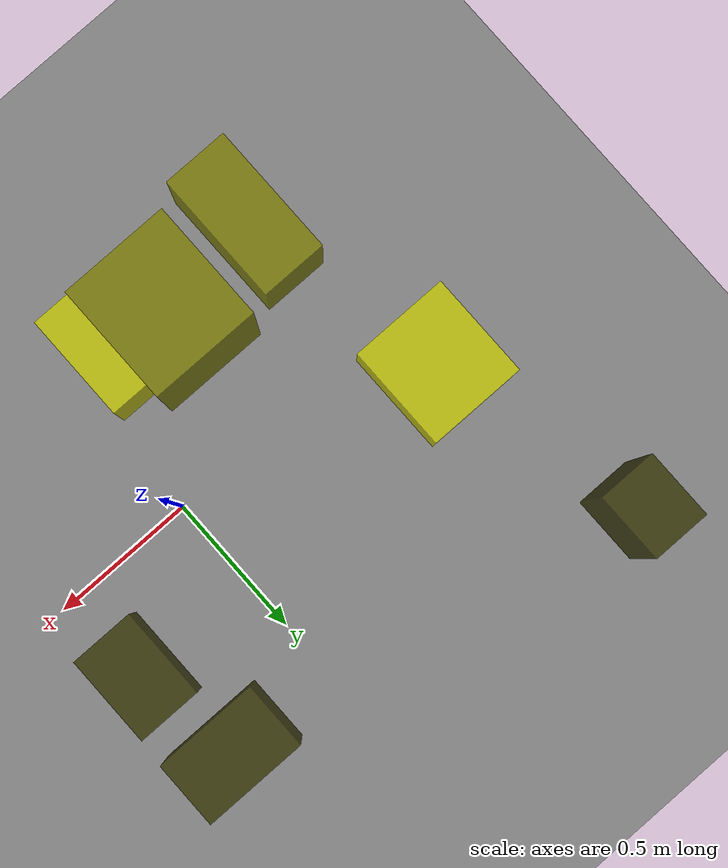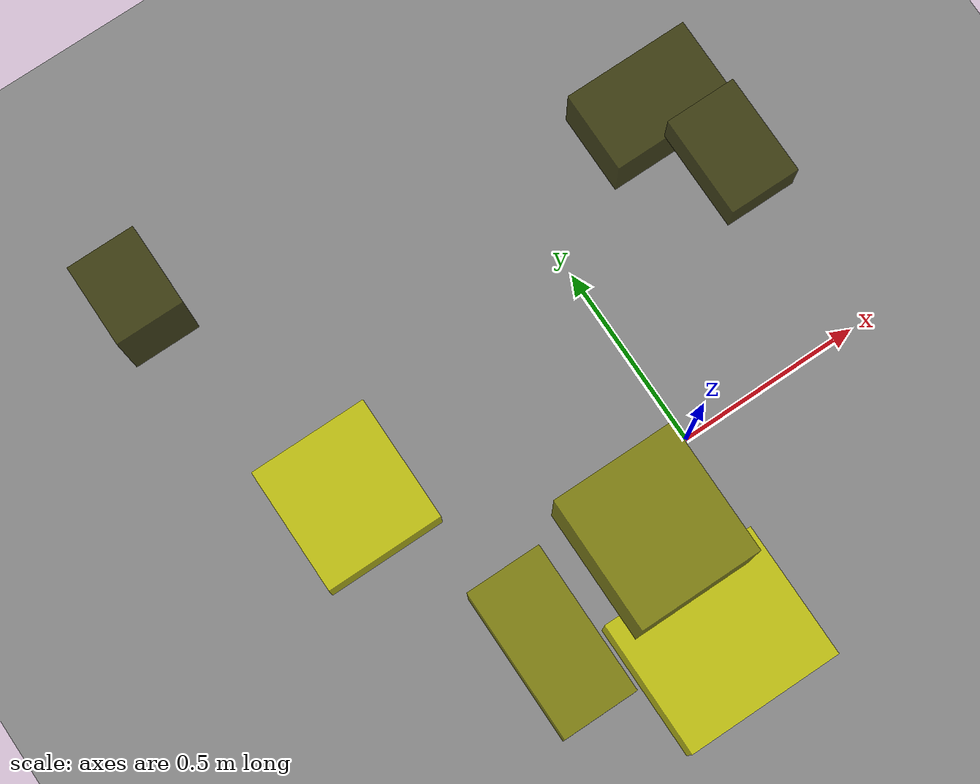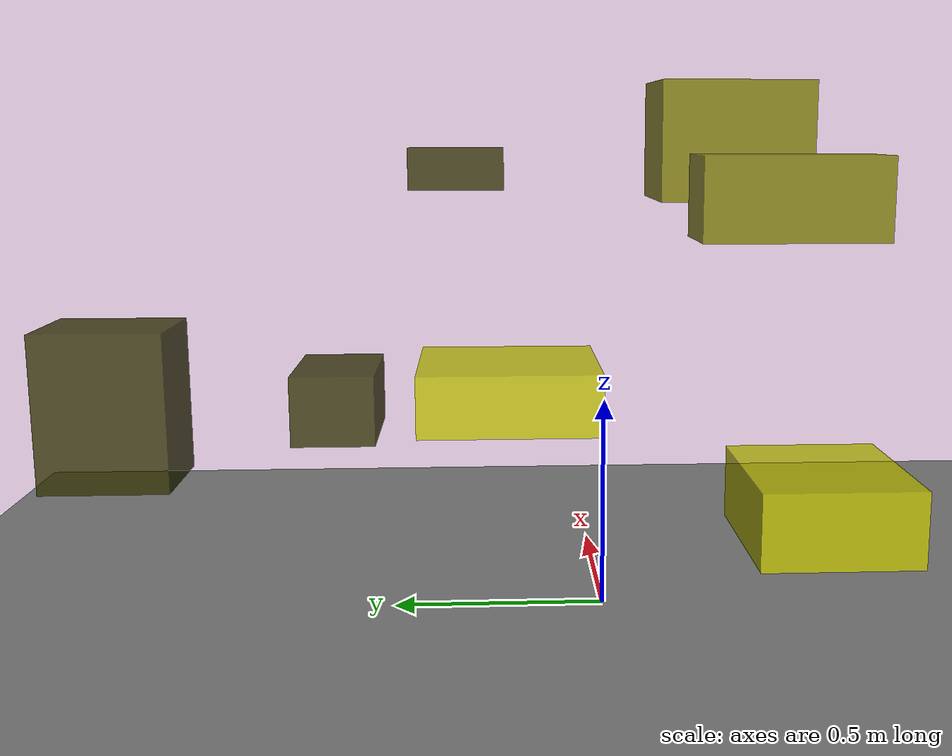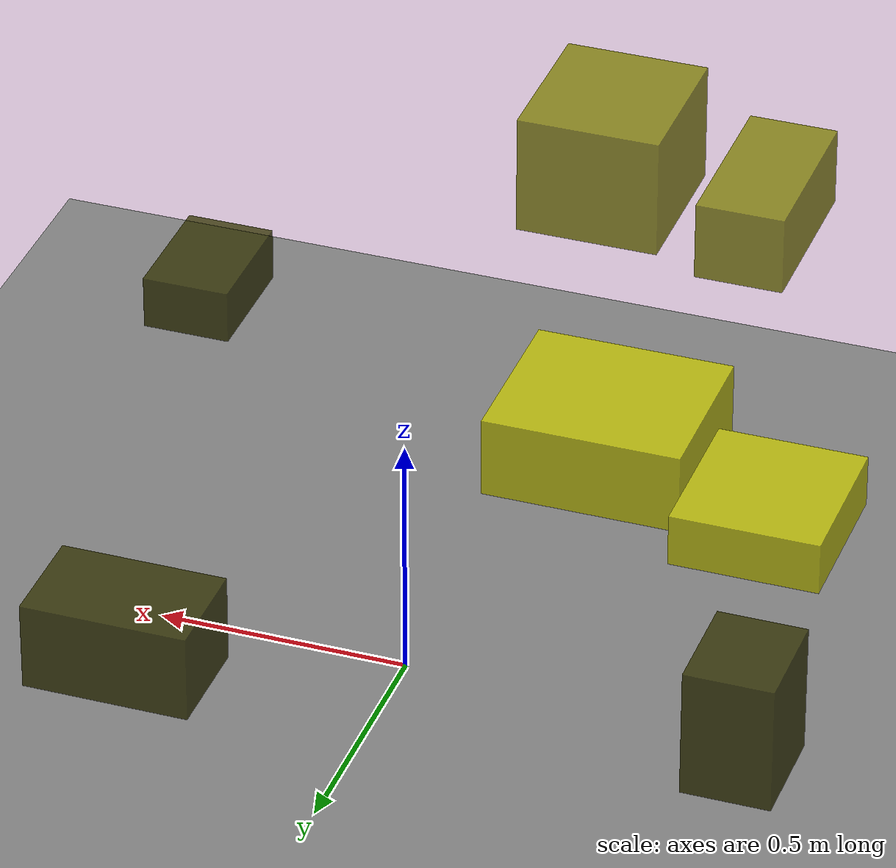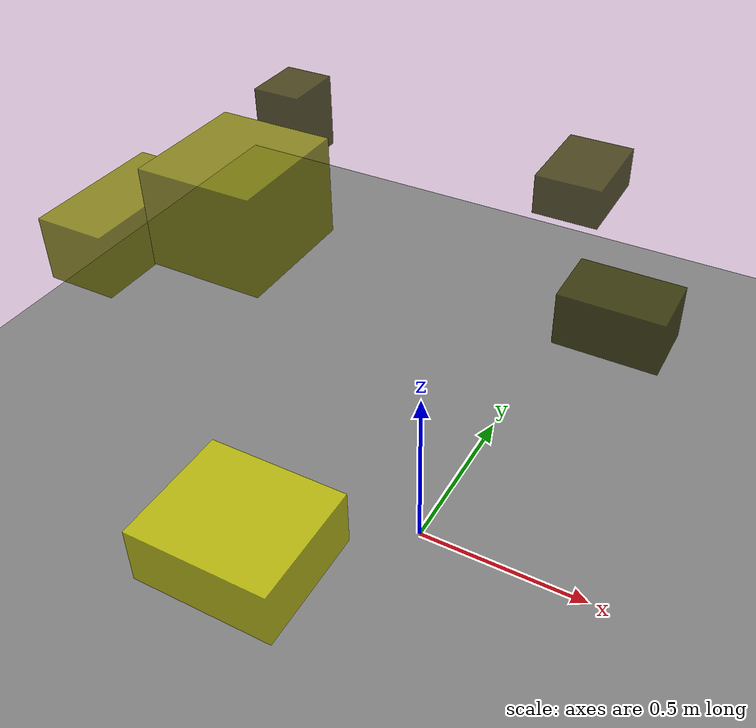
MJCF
<?xml version="1.0"?>
<mujoco model="obstacle_scene">
  <compiler angle="radian" coordinate="local"/>
  <option timestep="0.001" gravity="0 0 -9.81"/>

  <asset>
    <material name="obstacle_mat" rgba="0.8 0.8 0.0 0.8"/>
    <material name="ground_mat" rgba="0.5 0.5 0.5 1"/>
  </asset>

  <worldbody>
    <!-- Ground plane -->
    <geom name="ground" type="plane" size="3 3 0.1" material="ground_mat"/>

    <!-- Obstacles -->
    <body name="obstacle_0" pos="-0.924687 0.858878 0.704098">
      <geom name="obs_0" type="box" size="0.081888 0.099519 0.123598" rgba="0.2 0.2 0.0 0.8"/>
    </body>
    <body name="obstacle_1" pos="-0.610491 -0.273245 1.005042">
      <geom name="obs_1" type="box" size="0.084118 0.169084 0.076319" rgba="0.5 0.5 0.0 0.8"/>
    </body>
    <body name="obstacle_2" pos="-0.779866 0.239375 0.689860">
      <geom name="obs_2" type="box" size="0.141027 0.150740 0.050995" rgba="0.8 0.8 0.0 0.8"/>
    </body>
    <body name="obstacle_3" pos="0.305379 0.654155 0.444235">
      <geom name="obs_3" type="box" size="0.160202 0.103464 0.087255" rgba="0.2 0.2 0.0 0.8"/>
    </body>
    <body name="obstacle_4" pos="-0.331676 -0.209978 1.103388">
      <geom name="obs_4" type="box" size="0.134890 0.147658 0.115758" rgba="0.5 0.5 0.0 0.8"/>
    </body>
    <body name="obstacle_5" pos="-0.255298 -0.452969 0.316624">
      <geom name="obs_5" type="box" size="0.199943 0.172720 0.083681" rgba="0.8 0.8 0.0 0.8"/>
    </body>
    <body name="obstacle_6" pos="0.248468 0.345373 1.030767">
      <geom name="obs_6" type="box" size="0.080102 0.114648 0.049583" rgba="0.2 0.2 0.0 0.8"/>
    </body>
  </worldbody>
</mujoco>
